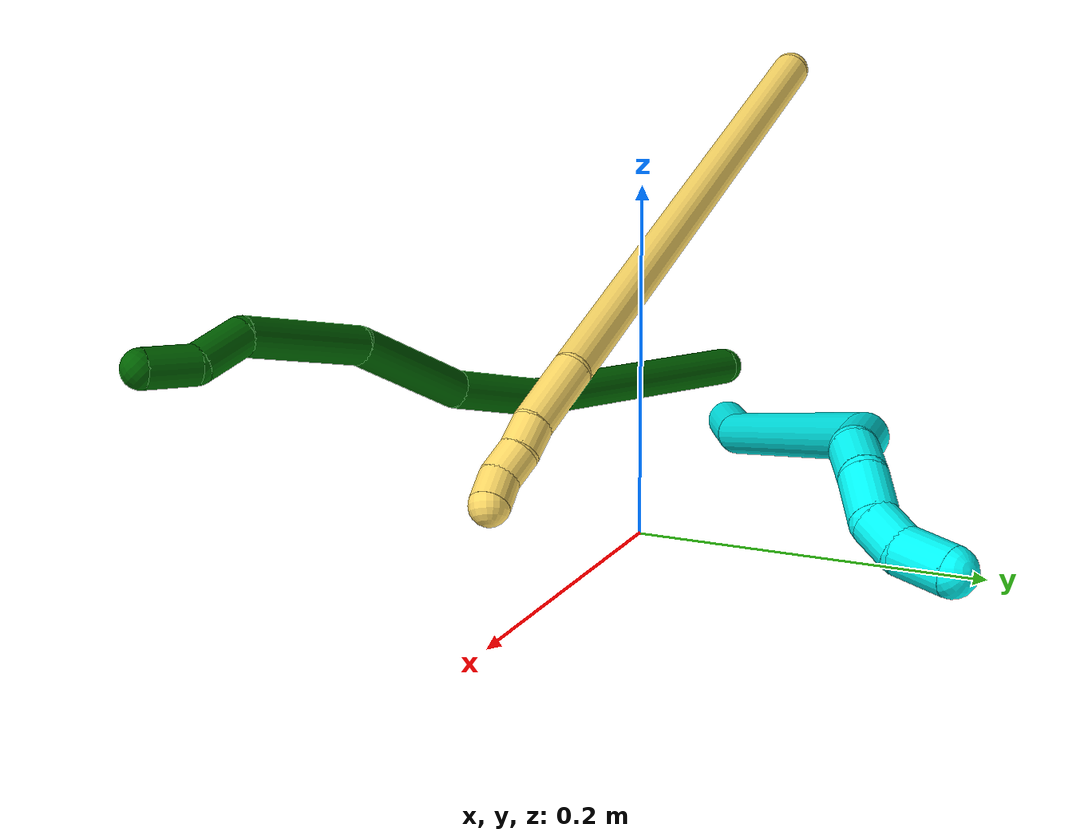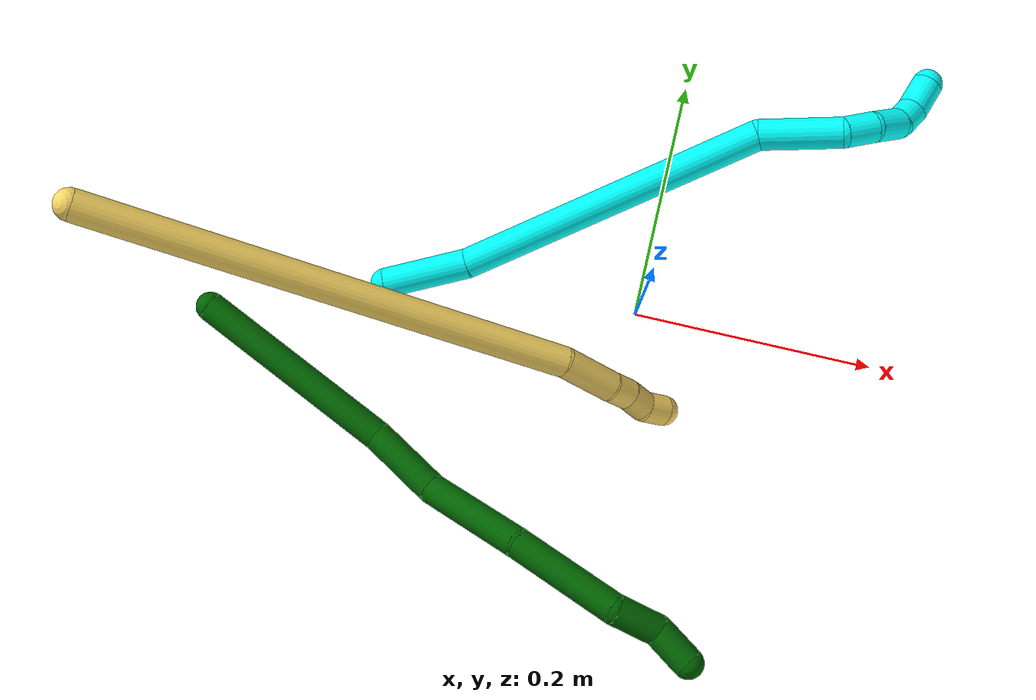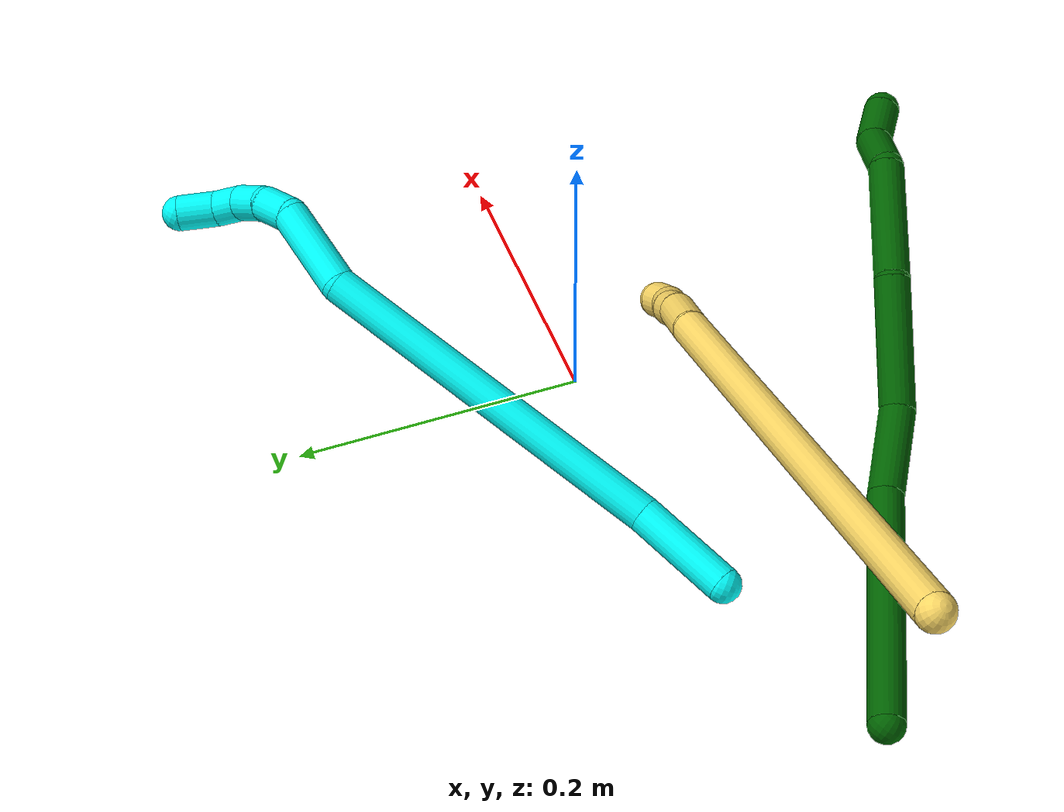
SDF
<sdf version="1.7">
 <world name="default">
  <model name="3">
   <static>0</static>
   <link name="3">
    <collision name="collision-cylinder-e_1_1_4">
     <pose>0.004084 -0.018199 0.030387 0.539609 0.114785 0.031776</pose>
     <geometry><cylinder><radius>0.0125</radius><length>0.071309</length></cylinder></geometry>
     <surface>
      <friction><ode><mu>1.16</mu><mu2>1.16</mu2><slip1>0</slip1><slip2>0</slip2></ode></friction>
      <contact><ode><kp>1e+06</kp><kd>1</kd><max_vel>0</max_vel><min_depth>0.001</min_depth></ode></contact>
     </surface>
    </collision>
    <visual name="visual-cylinder-e_1_1_4">
     <pose>0.004084 -0.018199 0.030387 0.539609 0.114785 0.031776</pose>
     <geometry><cylinder><radius>0.0125</radius><length>0.071309</length></cylinder></geometry>
     <material><ambient>0.003922 1 0.996078 1</ambient></material>
    </visual>
    <collision name="collision-cylinder-e_2_4_5">
     <pose>0.012272 -0.082649 0.181919 0.364709 0.031642 0.005835</pose>
     <geometry><cylinder><radius>0.0125</radius><length>0.259477</length></cylinder></geometry>
     <surface>
      <friction><ode><mu>1.16</mu><mu2>1.16</mu2><slip1>0</slip1><slip2>0</slip2></ode></friction>
      <contact><ode><kp>1e+06</kp><kd>1</kd><max_vel>0</max_vel><min_depth>0.001</min_depth></ode></contact>
     </surface>
    </collision>
    <visual name="visual-cylinder-e_2_4_5">
     <pose>0.012272 -0.082649 0.181919 0.364709 0.031642 0.005835</pose>
     <geometry><cylinder><radius>0.0125</radius><length>0.259477</length></cylinder></geometry>
     <material><ambient>0.003922 1 0.996078 1</ambient></material>
    </visual>
    <collision name="collision-cylinder-e_3_5_6">
     <pose>0.018221 -0.151836 0.32734 0.75698 0.055176 0.021946</pose>
     <geometry><cylinder><radius>0.0125</radius><length>0.066895</length></cylinder></geometry>
     <surface>
      <friction><ode><mu>1.16</mu><mu2>1.16</mu2><slip1>0</slip1><slip2>0</slip2></ode></friction>
      <contact><ode><kp>1e+06</kp><kd>1</kd><max_vel>0</max_vel><min_depth>0.001</min_depth></ode></contact>
     </surface>
    </collision>
    <visual name="visual-cylinder-e_3_5_6">
     <pose>0.018221 -0.151836 0.32734 0.75698 0.055176 0.021946</pose>
     <geometry><cylinder><radius>0.0125</radius><length>0.066895</length></cylinder></geometry>
     <material><ambient>0.003922 1 0.996078 1</ambient></material>
    </visual>
    <collision name="collision-cylinder-e_4_6_7">
     <pose>0.026307 -0.18122 0.361515 0.577515 0.486021 0.147023</pose>
     <geometry><cylinder><radius>0.0125</radius><length>0.026725</length></cylinder></geometry>
     <surface>
      <friction><ode><mu>1.16</mu><mu2>1.16</mu2><slip1>0</slip1><slip2>0</slip2></ode></friction>
      <contact><ode><kp>1e+06</kp><kd>1</kd><max_vel>0</max_vel><min_depth>0.001</min_depth></ode></contact>
     </surface>
    </collision>
    <visual name="visual-cylinder-e_4_6_7">
     <pose>0.026307 -0.18122 0.361515 0.577515 0.486021 0.147023</pose>
     <geometry><cylinder><radius>0.0125</radius><length>0.026725</length></cylinder></geometry>
     <material><ambient>0.003922 1 0.996078 1</ambient></material>
    </visual>
    <collision name="collision-cylinder-e_5_7_8">
     <pose>0.042406 -0.193147 0.379512 0.594579 0.789542 0.25392</pose>
     <geometry><cylinder><radius>0.0125</radius><length>0.027766</length></cylinder></geometry>
     <surface>
      <friction><ode><mu>1.16</mu><mu2>1.16</mu2><slip1>0</slip1><slip2>0</slip2></ode></friction>
      <contact><ode><kp>1e+06</kp><kd>1</kd><max_vel>0</max_vel><min_depth>0.001</min_depth></ode></contact>
     </surface>
    </collision>
    <visual name="visual-cylinder-e_5_7_8">
     <pose>0.042406 -0.193147 0.379512 0.594579 0.789542 0.25392</pose>
     <geometry><cylinder><radius>0.0125</radius><length>0.027766</length></cylinder></geometry>
     <material><ambient>0.003922 1 0.996078 1</ambient></material>
    </visual>
    <collision name="collision-cylinder-e_6_8_9">
     <pose>0.059326 -0.198285 0.394842 -0.046708 0.77303 -0.019013</pose>
     <geometry><cylinder><radius>0.0125</radius><length>0.020228</length></cylinder></geometry>
     <surface>
      <friction><ode><mu>1.16</mu><mu2>1.16</mu2><slip1>0</slip1><slip2>0</slip2></ode></friction>
      <contact><ode><kp>1e+06</kp><kd>1</kd><max_vel>0</max_vel><min_depth>0.001</min_depth></ode></contact>
     </surface>
    </collision>
    <visual name="visual-cylinder-e_6_8_9">
     <pose>0.059326 -0.198285 0.394842 -0.046708 0.77303 -0.019013</pose>
     <geometry><cylinder><radius>0.0125</radius><length>0.020228</length></cylinder></geometry>
     <material><ambient>0.003922 1 0.996078 1</ambient></material>
    </visual>
    <collision name="collision-cylinder-e_7_9_2">
     <pose>0.072474 -0.194462 0.413959 -0.285214 0.4567 -0.066713</pose>
     <geometry><cylinder><radius>0.0125</radius><length>0.0276</length></cylinder></geometry>
     <surface>
      <friction><ode><mu>1.16</mu><mu2>1.16</mu2><slip1>0</slip1><slip2>0</slip2></ode></friction>
      <contact><ode><kp>1e+06</kp><kd>1</kd><max_vel>0</max_vel><min_depth>0.001</min_depth></ode></contact>
     </surface>
    </collision>
    <visual name="visual-cylinder-e_7_9_2">
     <pose>0.072474 -0.194462 0.413959 -0.285214 0.4567 -0.066713</pose>
     <geometry><cylinder><radius>0.0125</radius><length>0.0276</length></cylinder></geometry>
     <material><ambient>0.003922 1 0.996078 1</ambient></material>
    </visual>
    <collision name="collision-sphere-2">
     <pose>0.07856 -0.190977 0.425845 0 -0 0</pose>
     <geometry><sphere><radius>0.0125</radius></sphere></geometry>
     <surface>
      <friction><ode><mu>1.16</mu><mu2>1.16</mu2><slip1>0</slip1><slip2>0</slip2></ode></friction>
      <contact><ode><kp>1e+06</kp><kd>1</kd><max_vel>0</max_vel><min_depth>0.001</min_depth></ode></contact>
     </surface>
    </collision>
    <visual name="visual-sphere-2">
     <pose>0.07856 -0.190977 0.425845 0 -0 0</pose>
     <geometry><sphere><radius>0.0125</radius></sphere></geometry>
     <material><ambient>0.003922 1 0.996078 1</ambient></material>
    </visual>
    <collision name="collision-sphere-9">
     <pose>0.066389 -0.197947 0.402074 0 -0 0</pose>
     <geometry><sphere><radius>0.0125</radius></sphere></geometry>
     <surface>
      <friction><ode><mu>1.16</mu><mu2>1.16</mu2><slip1>0</slip1><slip2>0</slip2></ode></friction>
      <contact><ode><kp>1e+06</kp><kd>1</kd><max_vel>0</max_vel><min_depth>0.001</min_depth></ode></contact>
     </surface>
    </collision>
    <visual name="visual-sphere-9">
     <pose>0.066389 -0.197947 0.402074 0 -0 0</pose>
     <geometry><sphere><radius>0.0125</radius></sphere></geometry>
     <material><ambient>0.003922 1 0.996078 1</ambient></material>
    </visual>
    <collision name="collision-sphere-4">
     <pose>0.008167 -0.036398 0.060775 0 -0 0</pose>
     <geometry><sphere><radius>0.0125</radius></sphere></geometry>
     <surface>
      <friction><ode><mu>1.16</mu><mu2>1.16</mu2><slip1>0</slip1><slip2>0</slip2></ode></friction>
      <contact><ode><kp>1e+06</kp><kd>1</kd><max_vel>0</max_vel><min_depth>0.001</min_depth></ode></contact>
     </surface>
    </collision>
    <visual name="visual-sphere-4">
     <pose>0.008167 -0.036398 0.060775 0 -0 0</pose>
     <geometry><sphere><radius>0.0125</radius></sphere></geometry>
     <material><ambient>0.003922 1 0.996078 1</ambient></material>
    </visual>
    <collision name="collision-sphere-1">
     <geometry><sphere><radius>0.0125</radius></sphere></geometry>
     <surface>
      <friction><ode><mu>1.16</mu><mu2>1.16</mu2><slip1>0</slip1><slip2>0</slip2></ode></friction>
      <contact><ode><kp>1e+06</kp><kd>1</kd><max_vel>0</max_vel><min_depth>0.001</min_depth></ode></contact>
     </surface>
    </collision>
    <visual name="visual-sphere-1">
     <geometry><sphere><radius>0.0125</radius></sphere></geometry>
     <material><ambient>0.003922 1 0.996078 1</ambient></material>
    </visual>
    <collision name="collision-sphere-8">
     <pose>0.052263 -0.198623 0.387611 0 -0 0</pose>
     <geometry><sphere><radius>0.0125</radius></sphere></geometry>
     <surface>
      <friction><ode><mu>1.16</mu><mu2>1.16</mu2><slip1>0</slip1><slip2>0</slip2></ode></friction>
      <contact><ode><kp>1e+06</kp><kd>1</kd><max_vel>0</max_vel><min_depth>0.001</min_depth></ode></contact>
     </surface>
    </collision>
    <visual name="visual-sphere-8">
     <pose>0.052263 -0.198623 0.387611 0 -0 0</pose>
     <geometry><sphere><radius>0.0125</radius></sphere></geometry>
     <material><ambient>0.003922 1 0.996078 1</ambient></material>
    </visual>
    <collision name="collision-sphere-5">
     <pose>0.016376 -0.128901 0.303063 0 -0 0</pose>
     <geometry><sphere><radius>0.0125</radius></sphere></geometry>
     <surface>
      <friction><ode><mu>1.16</mu><mu2>1.16</mu2><slip1>0</slip1><slip2>0</slip2></ode></friction>
      <contact><ode><kp>1e+06</kp><kd>1</kd><max_vel>0</max_vel><min_depth>0.001</min_depth></ode></contact>
     </surface>
    </collision>
    <visual name="visual-sphere-5">
     <pose>0.016376 -0.128901 0.303063 0 -0 0</pose>
     <geometry><sphere><radius>0.0125</radius></sphere></geometry>
     <material><ambient>0.003922 1 0.996078 1</ambient></material>
    </visual>
    <collision name="collision-sphere-6">
     <pose>0.020065 -0.17477 0.351617 0 -0 0</pose>
     <geometry><sphere><radius>0.0125</radius></sphere></geometry>
     <surface>
      <friction><ode><mu>1.16</mu><mu2>1.16</mu2><slip1>0</slip1><slip2>0</slip2></ode></friction>
      <contact><ode><kp>1e+06</kp><kd>1</kd><max_vel>0</max_vel><min_depth>0.001</min_depth></ode></contact>
     </surface>
    </collision>
    <visual name="visual-sphere-6">
     <pose>0.020065 -0.17477 0.351617 0 -0 0</pose>
     <geometry><sphere><radius>0.0125</radius></sphere></geometry>
     <material><ambient>0.003922 1 0.996078 1</ambient></material>
    </visual>
    <collision name="collision-sphere-7">
     <pose>0.032549 -0.187671 0.371414 0 -0 0</pose>
     <geometry><sphere><radius>0.0125</radius></sphere></geometry>
     <surface>
      <friction><ode><mu>1.16</mu><mu2>1.16</mu2><slip1>0</slip1><slip2>0</slip2></ode></friction>
      <contact><ode><kp>1e+06</kp><kd>1</kd><max_vel>0</max_vel><min_depth>0.001</min_depth></ode></contact>
     </surface>
    </collision>
    <visual name="visual-sphere-7">
     <pose>0.032549 -0.187671 0.371414 0 -0 0</pose>
     <geometry><sphere><radius>0.0125</radius></sphere></geometry>
     <material><ambient>0.003922 1 0.996078 1</ambient></material>
    </visual>
    <inertial>
     <pose>0.01955 -0.104969 0.221758 0 -0 0</pose>
     <mass>0.5</mass>
     <inertia>
      <ixx>0.00155</ixx>
      <ixy>0</ixy>
      <ixz>0</ixz>
      <iyy>0.001423</iyy>
      <iyz>0</iyz>
      <izz>0.000536</izz>
     </inertia>
    </inertial>
   </link>
   <pose>-0.209602 -0.023263 0.01147 0.051246 1.24912 1.03005</pose>
  </model>
  <model name="5">
   <static>0</static>
   <link name="5">
    <collision name="collision-cylinder-e_1_1_4">
     <pose>0.114176 -0.071133 -0.142642 2.679 0.621589 1.87625</pose>
     <geometry><cylinder><radius>0.0125</radius><length>0.392137</length></cylinder></geometry>
     <surface>
      <friction><ode><mu>1.16</mu><mu2>1.16</mu2><slip1>0</slip1><slip2>0</slip2></ode></friction>
      <contact><ode><kp>1e+06</kp><kd>1</kd><max_vel>0</max_vel><min_depth>0.001</min_depth></ode></contact>
     </surface>
    </collision>
    <visual name="visual-cylinder-e_1_1_4">
     <pose>0.114176 -0.071133 -0.142642 2.679 0.621589 1.87625</pose>
     <geometry><cylinder><radius>0.0125</radius><length>0.392137</length></cylinder></geometry>
     <material><ambient>1 0.858824 0.4 1</ambient></material>
    </visual>
    <collision name="collision-cylinder-e_2_4_5">
     <pose>0.237796 -0.153288 -0.304029 2.61007 0.409728 1.30395</pose>
     <geometry><cylinder><radius>0.0125</radius><length>0.047415</length></cylinder></geometry>
     <surface>
      <friction><ode><mu>1.16</mu><mu2>1.16</mu2><slip1>0</slip1><slip2>0</slip2></ode></friction>
      <contact><ode><kp>1e+06</kp><kd>1</kd><max_vel>0</max_vel><min_depth>0.001</min_depth></ode></contact>
     </surface>
    </collision>
    <visual name="visual-cylinder-e_2_4_5">
     <pose>0.237796 -0.153288 -0.304029 2.61007 0.409728 1.30395</pose>
     <geometry><cylinder><radius>0.0125</radius><length>0.047415</length></cylinder></geometry>
     <material><ambient>1 0.858824 0.4 1</ambient></material>
    </visual>
    <collision name="collision-cylinder-e_3_5_6">
     <pose>0.250206 -0.168017 -0.331605 2.74407 0.30025 1.28825</pose>
     <geometry><cylinder><radius>0.0125</radius><length>0.020052</length></cylinder></geometry>
     <surface>
      <friction><ode><mu>1.16</mu><mu2>1.16</mu2><slip1>0</slip1><slip2>0</slip2></ode></friction>
      <contact><ode><kp>1e+06</kp><kd>1</kd><max_vel>0</max_vel><min_depth>0.001</min_depth></ode></contact>
     </surface>
    </collision>
    <visual name="visual-cylinder-e_3_5_6">
     <pose>0.250206 -0.168017 -0.331605 2.74407 0.30025 1.28825</pose>
     <geometry><cylinder><radius>0.0125</radius><length>0.020052</length></cylinder></geometry>
     <material><ambient>1 0.858824 0.4 1</ambient></material>
    </visual>
    <collision name="collision-cylinder-e_4_6_7">
     <pose>0.25561 -0.17716 -0.348509 2.54908 0.245513 0.768244</pose>
     <geometry><cylinder><radius>0.0125</radius><length>0.020067</length></cylinder></geometry>
     <surface>
      <friction><ode><mu>1.16</mu><mu2>1.16</mu2><slip1>0</slip1><slip2>0</slip2></ode></friction>
      <contact><ode><kp>1e+06</kp><kd>1</kd><max_vel>0</max_vel><min_depth>0.001</min_depth></ode></contact>
     </surface>
    </collision>
    <visual name="visual-cylinder-e_4_6_7">
     <pose>0.25561 -0.17716 -0.348509 2.54908 0.245513 0.768244</pose>
     <geometry><cylinder><radius>0.0125</radius><length>0.020067</length></cylinder></geometry>
     <material><ambient>1 0.858824 0.4 1</ambient></material>
    </visual>
    <collision name="collision-cylinder-e_5_7_2">
     <pose>0.262431 -0.184979 -0.365438 2.87865 0.445836 2.08544</pose>
     <geometry><cylinder><radius>0.0125</radius><length>0.020329</length></cylinder></geometry>
     <surface>
      <friction><ode><mu>1.16</mu><mu2>1.16</mu2><slip1>0</slip1><slip2>0</slip2></ode></friction>
      <contact><ode><kp>1e+06</kp><kd>1</kd><max_vel>0</max_vel><min_depth>0.001</min_depth></ode></contact>
     </surface>
    </collision>
    <visual name="visual-cylinder-e_5_7_2">
     <pose>0.262431 -0.184979 -0.365438 2.87865 0.445836 2.08544</pose>
     <geometry><cylinder><radius>0.0125</radius><length>0.020329</length></cylinder></geometry>
     <material><ambient>1 0.858824 0.4 1</ambient></material>
    </visual>
    <collision name="collision-sphere-2">
     <pose>0.266815 -0.187363 -0.374294 0 -0 0</pose>
     <geometry><sphere><radius>0.0125</radius></sphere></geometry>
     <surface>
      <friction><ode><mu>1.16</mu><mu2>1.16</mu2><slip1>0</slip1><slip2>0</slip2></ode></friction>
      <contact><ode><kp>1e+06</kp><kd>1</kd><max_vel>0</max_vel><min_depth>0.001</min_depth></ode></contact>
     </surface>
    </collision>
    <visual name="visual-sphere-2">
     <pose>0.266815 -0.187363 -0.374294 0 -0 0</pose>
     <geometry><sphere><radius>0.0125</radius></sphere></geometry>
     <material><ambient>1 0.858824 0.4 1</ambient></material>
    </visual>
    <collision name="collision-sphere-7">
     <pose>0.258048 -0.182595 -0.356583 0 -0 0</pose>
     <geometry><sphere><radius>0.0125</radius></sphere></geometry>
     <surface>
      <friction><ode><mu>1.16</mu><mu2>1.16</mu2><slip1>0</slip1><slip2>0</slip2></ode></friction>
      <contact><ode><kp>1e+06</kp><kd>1</kd><max_vel>0</max_vel><min_depth>0.001</min_depth></ode></contact>
     </surface>
    </collision>
    <visual name="visual-sphere-7">
     <pose>0.258048 -0.182595 -0.356583 0 -0 0</pose>
     <geometry><sphere><radius>0.0125</radius></sphere></geometry>
     <material><ambient>1 0.858824 0.4 1</ambient></material>
    </visual>
    <collision name="collision-sphere-6">
     <pose>0.253171 -0.171725 -0.340435 0 -0 0</pose>
     <geometry><sphere><radius>0.0125</radius></sphere></geometry>
     <surface>
      <friction><ode><mu>1.16</mu><mu2>1.16</mu2><slip1>0</slip1><slip2>0</slip2></ode></friction>
      <contact><ode><kp>1e+06</kp><kd>1</kd><max_vel>0</max_vel><min_depth>0.001</min_depth></ode></contact>
     </surface>
    </collision>
    <visual name="visual-sphere-6">
     <pose>0.253171 -0.171725 -0.340435 0 -0 0</pose>
     <geometry><sphere><radius>0.0125</radius></sphere></geometry>
     <material><ambient>1 0.858824 0.4 1</ambient></material>
    </visual>
    <collision name="collision-sphere-5">
     <pose>0.24724 -0.164309 -0.322774 0 -0 0</pose>
     <geometry><sphere><radius>0.0125</radius></sphere></geometry>
     <surface>
      <friction><ode><mu>1.16</mu><mu2>1.16</mu2><slip1>0</slip1><slip2>0</slip2></ode></friction>
      <contact><ode><kp>1e+06</kp><kd>1</kd><max_vel>0</max_vel><min_depth>0.001</min_depth></ode></contact>
     </surface>
    </collision>
    <visual name="visual-sphere-5">
     <pose>0.24724 -0.164309 -0.322774 0 -0 0</pose>
     <geometry><sphere><radius>0.0125</radius></sphere></geometry>
     <material><ambient>1 0.858824 0.4 1</ambient></material>
    </visual>
    <collision name="collision-sphere-1">
     <geometry><sphere><radius>0.0125</radius></sphere></geometry>
     <surface>
      <friction><ode><mu>1.16</mu><mu2>1.16</mu2><slip1>0</slip1><slip2>0</slip2></ode></friction>
      <contact><ode><kp>1e+06</kp><kd>1</kd><max_vel>0</max_vel><min_depth>0.001</min_depth></ode></contact>
     </surface>
    </collision>
    <visual name="visual-sphere-1">
     <geometry><sphere><radius>0.0125</radius></sphere></geometry>
     <material><ambient>1 0.858824 0.4 1</ambient></material>
    </visual>
    <collision name="collision-sphere-4">
     <pose>0.228352 -0.142266 -0.285284 0 -0 0</pose>
     <geometry><sphere><radius>0.0125</radius></sphere></geometry>
     <surface>
      <friction><ode><mu>1.16</mu><mu2>1.16</mu2><slip1>0</slip1><slip2>0</slip2></ode></friction>
      <contact><ode><kp>1e+06</kp><kd>1</kd><max_vel>0</max_vel><min_depth>0.001</min_depth></ode></contact>
     </surface>
    </collision>
    <visual name="visual-sphere-4">
     <pose>0.228352 -0.142266 -0.285284 0 -0 0</pose>
     <geometry><sphere><radius>0.0125</radius></sphere></geometry>
     <material><ambient>1 0.858824 0.4 1</ambient></material>
    </visual>
    <inertial>
     <pose>0.143058 -0.091693 -0.182845 0 -0 0</pose>
     <mass>0.5</mass>
     <inertia>
      <ixx>0.002713</ixx>
      <ixy>0</ixy>
      <ixz>0</ixz>
      <iyy>0.006511</iyy>
      <iyz>0</iyz>
      <izz>-0.001135</izz>
     </inertia>
    </inertial>
   </link>
   <pose>-0.414473 -0.052436 0.218891 0.080947 -0.527561 0.299118</pose>
  </model>
  <model name="6">
   <static>0</static>
   <link name="6">
    <collision name="collision-cylinder-e_1_1_4">
     <pose>0.045885 -0.062023 0.04527 0.94029 0.538623 0.278697</pose>
     <geometry><cylinder><radius>0.0125</radius><length>0.178904</length></cylinder></geometry>
     <surface>
      <friction><ode><mu>1.16</mu><mu2>1.16</mu2><slip1>0</slip1><slip2>0</slip2></ode></friction>
      <contact><ode><kp>1e+06</kp><kd>1</kd><max_vel>0</max_vel><min_depth>0.001</min_depth></ode></contact>
     </surface>
    </collision>
    <visual name="visual-cylinder-e_1_1_4">
     <pose>0.045885 -0.062023 0.04527 0.94029 0.538623 0.278697</pose>
     <geometry><cylinder><radius>0.0125</radius><length>0.178904</length></cylinder></geometry>
     <material><ambient>0 0.392157 0.003922 1</ambient></material>
    </visual>
    <collision name="collision-cylinder-e_2_4_5">
     <pose>0.106665 -0.14272 0.11259 0.702676 0.475979 0.177372</pose>
     <geometry><cylinder><radius>0.0125</radius><length>0.065018</length></cylinder></geometry>
     <surface>
      <friction><ode><mu>1.16</mu><mu2>1.16</mu2><slip1>0</slip1><slip2>0</slip2></ode></friction>
      <contact><ode><kp>1e+06</kp><kd>1</kd><max_vel>0</max_vel><min_depth>0.001</min_depth></ode></contact>
     </surface>
    </collision>
    <visual name="visual-cylinder-e_2_4_5">
     <pose>0.106665 -0.14272 0.11259 0.702676 0.475979 0.177372</pose>
     <geometry><cylinder><radius>0.0125</radius><length>0.065018</length></cylinder></geometry>
     <material><ambient>0 0.392157 0.003922 1</ambient></material>
    </visual>
    <collision name="collision-cylinder-e_3_5_6">
     <pose>0.150415 -0.176003 0.167636 0.416825 0.674501 0.148041</pose>
     <geometry><cylinder><radius>0.0125</radius><length>0.092405</length></cylinder></geometry>
     <surface>
      <friction><ode><mu>1.16</mu><mu2>1.16</mu2><slip1>0</slip1><slip2>0</slip2></ode></friction>
      <contact><ode><kp>1e+06</kp><kd>1</kd><max_vel>0</max_vel><min_depth>0.001</min_depth></ode></contact>
     </surface>
    </collision>
    <visual name="visual-cylinder-e_3_5_6">
     <pose>0.150415 -0.176003 0.167636 0.416825 0.674501 0.148041</pose>
     <geometry><cylinder><radius>0.0125</radius><length>0.092405</length></cylinder></geometry>
     <material><ambient>0 0.392157 0.003922 1</ambient></material>
    </visual>
    <collision name="collision-cylinder-e_4_6_7">
     <pose>0.206427 -0.215509 0.227795 0.741881 0.635172 0.254323</pose>
     <geometry><cylinder><radius>0.0125</radius><length>0.091549</length></cylinder></geometry>
     <surface>
      <friction><ode><mu>1.16</mu><mu2>1.16</mu2><slip1>0</slip1><slip2>0</slip2></ode></friction>
      <contact><ode><kp>1e+06</kp><kd>1</kd><max_vel>0</max_vel><min_depth>0.001</min_depth></ode></contact>
     </surface>
    </collision>
    <visual name="visual-cylinder-e_4_6_7">
     <pose>0.206427 -0.215509 0.227795 0.741881 0.635172 0.254323</pose>
     <geometry><cylinder><radius>0.0125</radius><length>0.091549</length></cylinder></geometry>
     <material><ambient>0 0.392157 0.003922 1</ambient></material>
    </visual>
    <collision name="collision-cylinder-e_5_7_8">
     <pose>0.244597 -0.255941 0.2581 1.37127 0.607154 0.501715</pose>
     <geometry><cylinder><radius>0.0125</radius><length>0.038597</length></cylinder></geometry>
     <surface>
      <friction><ode><mu>1.16</mu><mu2>1.16</mu2><slip1>0</slip1><slip2>0</slip2></ode></friction>
      <contact><ode><kp>1e+06</kp><kd>1</kd><max_vel>0</max_vel><min_depth>0.001</min_depth></ode></contact>
     </surface>
    </collision>
    <visual name="visual-cylinder-e_5_7_8">
     <pose>0.244597 -0.255941 0.2581 1.37127 0.607154 0.501715</pose>
     <geometry><cylinder><radius>0.0125</radius><length>0.038597</length></cylinder></geometry>
     <material><ambient>0 0.392157 0.003922 1</ambient></material>
    </visual>
    <collision name="collision-cylinder-e_6_8_2">
     <pose>0.261818 -0.283406 0.271247 0.872915 0.379525 0.178712</pose>
     <geometry><cylinder><radius>0.0125</radius><length>0.033528</length></cylinder></geometry>
     <surface>
      <friction><ode><mu>1.16</mu><mu2>1.16</mu2><slip1>0</slip1><slip2>0</slip2></ode></friction>
      <contact><ode><kp>1e+06</kp><kd>1</kd><max_vel>0</max_vel><min_depth>0.001</min_depth></ode></contact>
     </surface>
    </collision>
    <visual name="visual-cylinder-e_6_8_2">
     <pose>0.261818 -0.283406 0.271247 0.872915 0.379525 0.178712</pose>
     <geometry><cylinder><radius>0.0125</radius><length>0.033528</length></cylinder></geometry>
     <material><ambient>0 0.392157 0.003922 1</ambient></material>
    </visual>
    <collision name="collision-sphere-2">
     <pose>0.268028 -0.295337 0.281253 0 -0 0</pose>
     <geometry><sphere><radius>0.0125</radius></sphere></geometry>
     <surface>
      <friction><ode><mu>1.16</mu><mu2>1.16</mu2><slip1>0</slip1><slip2>0</slip2></ode></friction>
      <contact><ode><kp>1e+06</kp><kd>1</kd><max_vel>0</max_vel><min_depth>0.001</min_depth></ode></contact>
     </surface>
    </collision>
    <visual name="visual-sphere-2">
     <pose>0.268028 -0.295337 0.281253 0 -0 0</pose>
     <geometry><sphere><radius>0.0125</radius></sphere></geometry>
     <material><ambient>0 0.392157 0.003922 1</ambient></material>
    </visual>
    <collision name="collision-sphere-4">
     <pose>0.091769 -0.124046 0.09054 0 -0 0</pose>
     <geometry><sphere><radius>0.0125</radius></sphere></geometry>
     <surface>
      <friction><ode><mu>1.16</mu><mu2>1.16</mu2><slip1>0</slip1><slip2>0</slip2></ode></friction>
      <contact><ode><kp>1e+06</kp><kd>1</kd><max_vel>0</max_vel><min_depth>0.001</min_depth></ode></contact>
     </surface>
    </collision>
    <visual name="visual-sphere-4">
     <pose>0.091769 -0.124046 0.09054 0 -0 0</pose>
     <geometry><sphere><radius>0.0125</radius></sphere></geometry>
     <material><ambient>0 0.392157 0.003922 1</ambient></material>
    </visual>
    <collision name="collision-sphere-1">
     <geometry><sphere><radius>0.0125</radius></sphere></geometry>
     <surface>
      <friction><ode><mu>1.16</mu><mu2>1.16</mu2><slip1>0</slip1><slip2>0</slip2></ode></friction>
      <contact><ode><kp>1e+06</kp><kd>1</kd><max_vel>0</max_vel><min_depth>0.001</min_depth></ode></contact>
     </surface>
    </collision>
    <visual name="visual-sphere-1">
     <geometry><sphere><radius>0.0125</radius></sphere></geometry>
     <material><ambient>0 0.392157 0.003922 1</ambient></material>
    </visual>
    <collision name="collision-sphere-8">
     <pose>0.255607 -0.271476 0.261242 0 -0 0</pose>
     <geometry><sphere><radius>0.0125</radius></sphere></geometry>
     <surface>
      <friction><ode><mu>1.16</mu><mu2>1.16</mu2><slip1>0</slip1><slip2>0</slip2></ode></friction>
      <contact><ode><kp>1e+06</kp><kd>1</kd><max_vel>0</max_vel><min_depth>0.001</min_depth></ode></contact>
     </surface>
    </collision>
    <visual name="visual-sphere-8">
     <pose>0.255607 -0.271476 0.261242 0 -0 0</pose>
     <geometry><sphere><radius>0.0125</radius></sphere></geometry>
     <material><ambient>0 0.392157 0.003922 1</ambient></material>
    </visual>
    <collision name="collision-sphere-5">
     <pose>0.121561 -0.161394 0.134641 0 -0 0</pose>
     <geometry><sphere><radius>0.0125</radius></sphere></geometry>
     <surface>
      <friction><ode><mu>1.16</mu><mu2>1.16</mu2><slip1>0</slip1><slip2>0</slip2></ode></friction>
      <contact><ode><kp>1e+06</kp><kd>1</kd><max_vel>0</max_vel><min_depth>0.001</min_depth></ode></contact>
     </surface>
    </collision>
    <visual name="visual-sphere-5">
     <pose>0.121561 -0.161394 0.134641 0 -0 0</pose>
     <geometry><sphere><radius>0.0125</radius></sphere></geometry>
     <material><ambient>0 0.392157 0.003922 1</ambient></material>
    </visual>
    <collision name="collision-sphere-6">
     <pose>0.179269 -0.190612 0.200632 0 -0 0</pose>
     <geometry><sphere><radius>0.0125</radius></sphere></geometry>
     <surface>
      <friction><ode><mu>1.16</mu><mu2>1.16</mu2><slip1>0</slip1><slip2>0</slip2></ode></friction>
      <contact><ode><kp>1e+06</kp><kd>1</kd><max_vel>0</max_vel><min_depth>0.001</min_depth></ode></contact>
     </surface>
    </collision>
    <visual name="visual-sphere-6">
     <pose>0.179269 -0.190612 0.200632 0 -0 0</pose>
     <geometry><sphere><radius>0.0125</radius></sphere></geometry>
     <material><ambient>0 0.392157 0.003922 1</ambient></material>
    </visual>
    <collision name="collision-sphere-7">
     <pose>0.233586 -0.240406 0.254959 0 -0 0</pose>
     <geometry><sphere><radius>0.0125</radius></sphere></geometry>
     <surface>
      <friction><ode><mu>1.16</mu><mu2>1.16</mu2><slip1>0</slip1><slip2>0</slip2></ode></friction>
      <contact><ode><kp>1e+06</kp><kd>1</kd><max_vel>0</max_vel><min_depth>0.001</min_depth></ode></contact>
     </surface>
    </collision>
    <visual name="visual-sphere-7">
     <pose>0.233586 -0.240406 0.254959 0 -0 0</pose>
     <geometry><sphere><radius>0.0125</radius></sphere></geometry>
     <material><ambient>0 0.392157 0.003922 1</ambient></material>
    </visual>
    <inertial>
     <pose>0.132321 -0.151498 0.141641 0 -0 0</pose>
     <mass>0.5</mass>
     <inertia>
      <ixx>0.000701</ixx>
      <ixy>0</ixy>
      <ixz>0</ixz>
      <iyy>0.000596</iyy>
      <iyz>0</iyz>
      <izz>9.1e-05</izz>
     </inertia>
    </inertial>
   </link>
   <pose>-0.346591 -0.07577 0.011897 0.737858 -0.262972 0.595714</pose>
  </model>
 </world>
</sdf>
